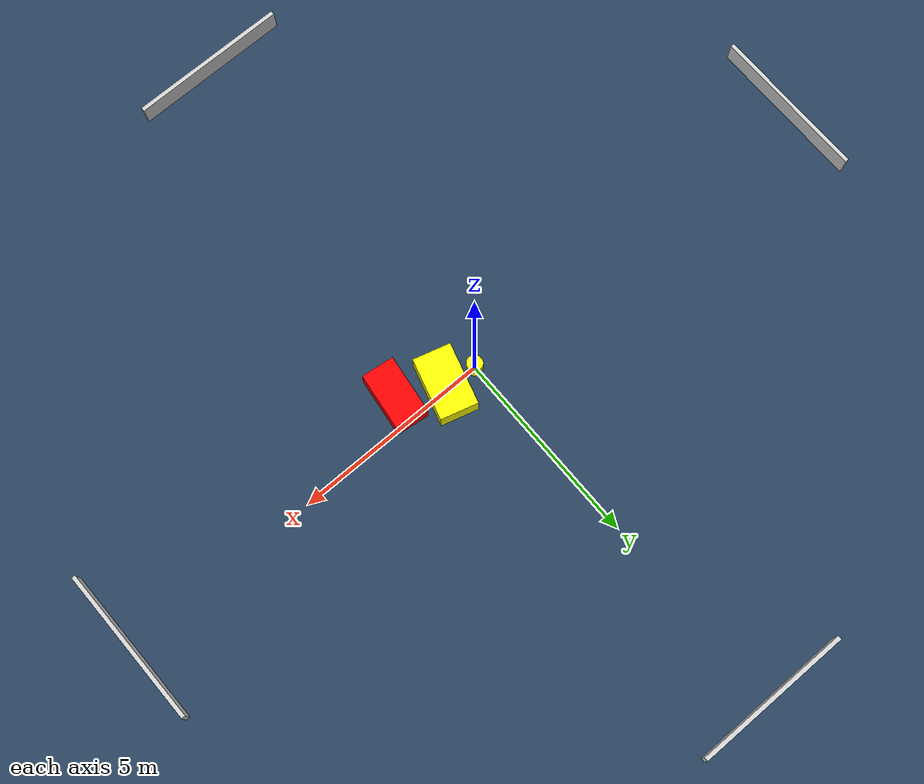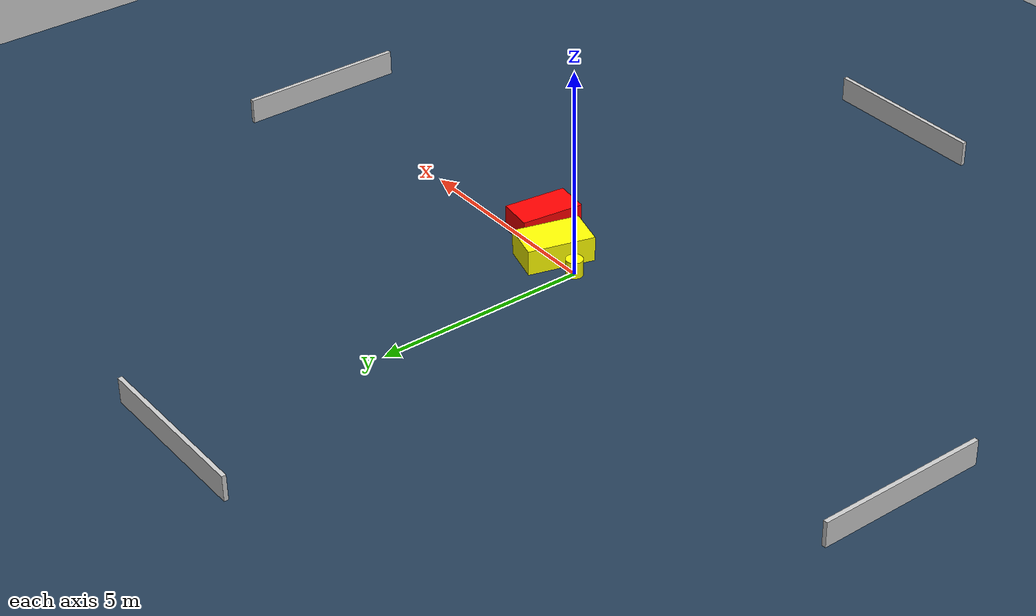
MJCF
<?xml version="1.0" ?>
<mujoco model="generated_environment">
  <option timestep="0.01" integrator="RK4" cone="elliptic"/>
  <default>
    <geom density="1"/>
  </default>
  <asset>
    <texture builtin="gradient" height="3072" name="skybox" rgb1="0.3 0.5 0.7" rgb2="0 0 0" type="skybox" width="512"/>
    <texture builtin="checker" height="300" name="groundplane" rgb1="0.2 0.3 0.4" rgb2="0.1 0.2 0.3" type="2d" width="300"/>
    <material name="groundplane" reflectance="0.2" texrepeat="5 5" texture="groundplane"/>
  </asset>
  <worldbody>
    <light dir="0 0 -1" directional="true" pos="0 0 1.5"/>
    <geom condim="3" friction="0.5 0.005 0.001" material="groundplane" name="floor" pos="0 0 0" size="0 0 0.05" type="plane"/>
    <body name="walls">
      <geom name="wall_1" condim="4" pos="-10.0 0.0 0.3" rgba="0.800000011920929 0.800000011920929 0.800000011920929 1.0" size="0.05 2.0 0.3" type="box"/>
      <geom name="wall_2" condim="4" pos="10.0 0.0 0.3" rgba="0.800000011920929 0.800000011920929 0.800000011920929 1.0" size="0.05 2.0 0.3" type="box"/>
      <geom name="wall_3" condim="4" pos="0.0 -10.0 0.3" rgba="0.800000011920929 0.800000011920929 0.800000011920929 1.0" size="2.0 0.05 0.3" type="box"/>
      <geom name="wall_4" condim="4" pos="0.0 10.0 0.3" rgba="0.800000011920929 0.800000011920929 0.800000011920929 1.0" size="2.0 0.05 0.3" type="box"/>
    </body>
    <body name="robot">
      <joint name="joint_x" type="slide" pos="0 0 0" axis="1 0 0"/>
      <joint name="joint_y" type="slide" pos="0 0 0" axis="0 1 0"/>
      <geom name="robot" type="cylinder" pos="0.0 0.0 0.2" size="0.2 0.2 0.0" mass="5.0" friction="1.0 0.005 0.0001" condim="4" rgba="1.0 1.0 0.0 1.0"/>
    </body>
    <body name="obstacle_1_movable">
      <geom name="obstacle_1_movable" condim="4" pos="0.8274237181929636 -0.06838561646999369 0.3" euler="0 0 164.18061022298767" friction="0.0 0.005 0.001" rgba="1.0 1.0 0.0 1.0" size="0.47818811524493876 0.7860438309290891 0.3" type="box" mass="0.1"/>
      <joint type="free"/>
    </body>
    <body name="obstacle_2_static">
      <geom name="obstacle_2_static" condim="4" pos="1.8899484364584325 -0.6108975677248714 0.3" euler="0 0 352.7485430050684" friction="0.0 0.005 0.001" rgba="1.0 0.0 0.0 1.0" size="0.41443145153570415 0.7431838329145342 0.3" type="box"/>
    </body>
  </worldbody>
  <actuator>
    <motor name="actuator_x" joint="joint_x" gear="1" ctrlrange="-1 1"/>
    <motor name="actuator_y" joint="joint_y" gear="1" ctrlrange="-1 1"/>
  </actuator>
</mujoco>
